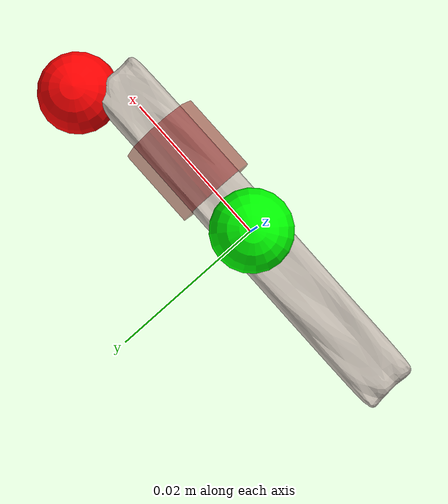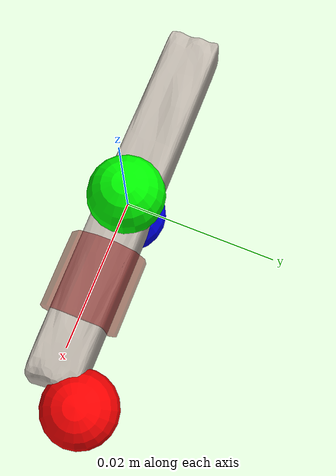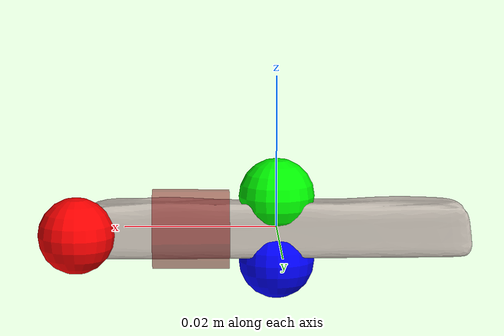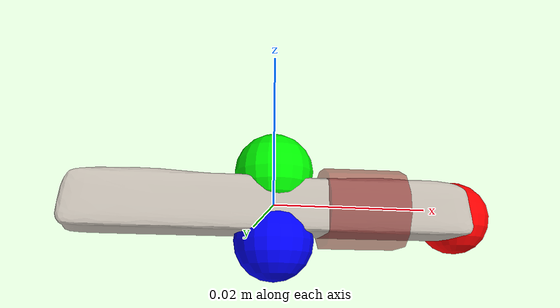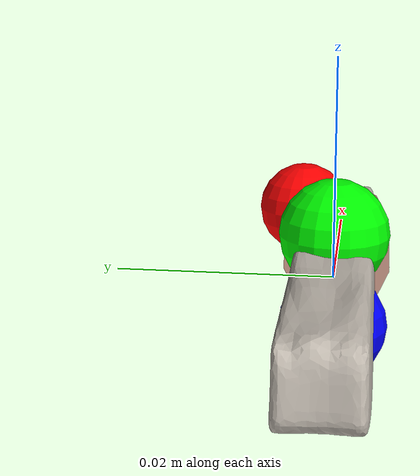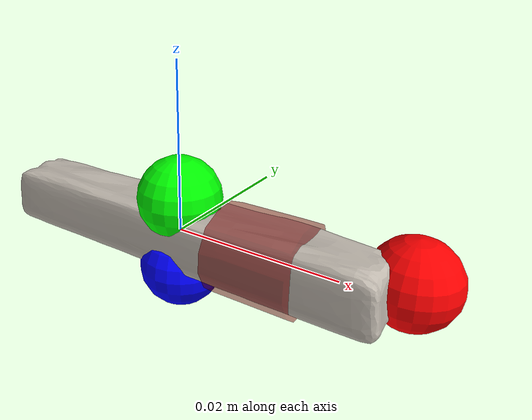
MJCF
<?xml version='1.0' encoding='UTF-8'?>
<mujoco model="model">
  <compiler angle="radian"/>
  <asset>
    <mesh file="visual/CreamCheese011.obj" name="CreamCheese011_vis"/>
    <texture file="visual/T_BC001.png" name="CreamCheese011_material" type="2d"/>
    <material name="CreamCheese011_material" rgba="1 1 1 1.0" texture="CreamCheese011_material" shininess="0.10000002384185791" specular="0.33333333333333337"/>
    <mesh file="collision/CreamCheese011001.obj" name="CreamCheese011001_mesh"/>
  </asset>
  <default>
    <default class="visual">
      <geom conaffinity="0" contype="0" group="1" type="mesh"/>
    </default>
    <default class="collision">
      <geom group="0" rgba="0.5 0 0 0.5"/>
    </default>
    <default class="spawn">
      <geom group="0" rgba="1 1 1 0.5" contype="0" conaffinity="0"/>
      <site group="0" rgba="1 1 1 0.5"/>
    </default>
    <default class="region">
      <geom group="1" conaffinity="0" contype="0" rgba="0 1 0 0"/>
    </default>
  </default>
  <worldbody>
    <body>
      <body name="object">
        <geom mesh="CreamCheese011_vis" type="mesh" solimp="0.998 0.998 0.001" solref="0.001 1" density="100" friction="0.95 0.3 0.1" class="visual" material="CreamCheese011_material"/>
        <geom mesh="CreamCheese011001_mesh" type="mesh" class="collision"/>
      </body>
      <site rgba="1 0 0 1" size="0.005" pos="0.02617626 0.00443502 -0.000225635" name="horizontal_radius_site"/>
      <site rgba="0 1 0 1" size="0.005" pos="-9.320000000000704e-06 -3.785000000000172e-06 0.00410189" name="top_site"/>
      <site rgba="0 0 1 1" size="0.005" pos="-9.320000000000704e-06 -3.785000000000172e-06 -0.0045531600000000005" name="bottom_site"/>
    </body>
  </worldbody>
  <actuator/>
</mujoco>
